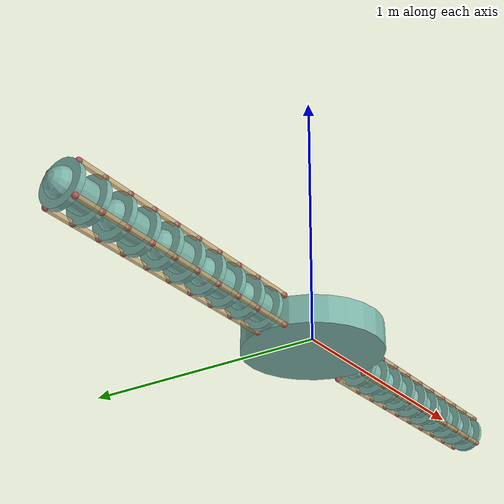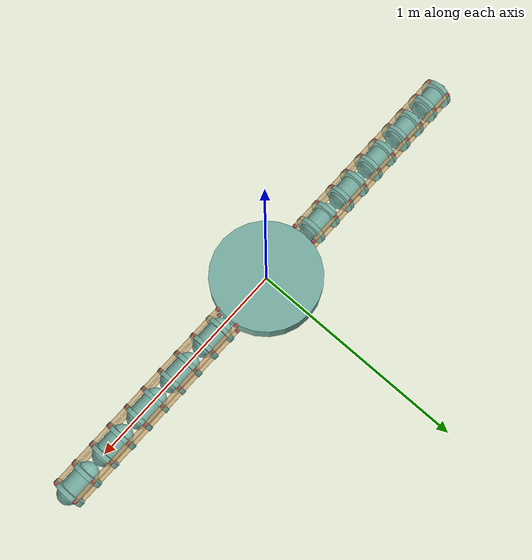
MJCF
<mujoco model="default">
    <compiler angle="radian"/>
    <default>
        <default class="/"/>
    </default>
    <worldbody>
        <body name="//unnamed_body_0">
            <body name="central_disc" pos="0 0 0" euler="0 0 0">
                <geom name="central_disc_disc" class="/" type="cylinder" size="0.25 0.050000000000000003"
                      rgba="0.49019607843137253 0.70980392156862748 0.6588235294117647 1" pos="0 0 0" euler="0 0 0"/>
                <body name="arm_0" pos="0.25 0 0" euler="0 0 0">
                    <body name="arm_0_segment_0" pos="0 0 0" euler="0 0 0">
                        <geom name="arm_0_segment_0_capsule" class="/" type="capsule"
                              size="0.050000000000000003 0.050000000000000003"
                              rgba="0.49019607843137253 0.70980392156862748 0.6588235294117647 1"
                              pos="0.10000000000000001 0 0" euler="0 1.5707963267948966 0"/>
                        <joint name="arm_0_segment_0_in_plane_joint" class="/" type="hinge" pos="0 0 0" axis="0 0 1"
                               limited="true" stiffness="0.10000000000000001"
                               range="-0.3490658503988659 0.3490658503988659" damping="0.01"/>
                        <joint name="arm_0_segment_0_out_of_plane_joint" class="/" type="hinge" pos="0 0 0" axis="0 1 0"
                               limited="true" stiffness="0.10000000000000001"
                               range="-0.3490658503988659 0.3490658503988659" damping="0.01"/>
                        <geom name="arm_0_segment_0_tendon_plate_proximal" class="/" type="cylinder"
                              size="0.075000000000000011 0.01"
                              rgba="0.49019607843137253 0.70980392156862748 0.6588235294117647 1"
                              pos="0.050000000000000003 0 0" euler="0 1.5707963267948966 0"/>
                        <site name="arm_0_segment_0_muscle_attachment_point_proximal_0" class="/" type="sphere"
                              rgba="0.71764705882352942 0.33725490196078434 0.34901960784313724 1" size="0.01"
                              pos="0 0.053033008588991078 -0.053033008588991071"/>
                        <site name="arm_0_segment_0_muscle_attachment_point_proximal_1" class="/" type="sphere"
                              rgba="0.71764705882352942 0.33725490196078434 0.34901960784313724 1" size="0.01"
                              pos="0 -0.053033008588991071 -0.053033008588991078"/>
                        <site name="arm_0_segment_0_muscle_attachment_point_proximal_2" class="/" type="sphere"
                              rgba="0.71764705882352942 0.33725490196078434 0.34901960784313724 1" size="0.01"
                              pos="0 0.053033008588991078 0.053033008588991071"/>
                        <site name="arm_0_segment_0_muscle_attachment_point_proximal_3" class="/" type="sphere"
                              rgba="0.71764705882352942 0.33725490196078434 0.34901960784313724 1" size="0.01"
                              pos="0 -0.053033008588991071 0.053033008588991078"/>
                        <geom name="arm_0_segment_0_tendon_plate_distal" class="/" type="cylinder"
                              size="0.075000000000000011 0.01"
                              rgba="0.49019607843137253 0.70980392156862748 0.6588235294117647 1"
                              pos="0.15000000000000002 0 0" euler="0 1.5707963267948966 0"/>
                        <site name="arm_0_segment_0_muscle_attachment_point_distal_0" class="/" type="sphere"
                              rgba="0.71764705882352942 0.33725490196078434 0.34901960784313724 1" size="0.01"
                              pos="0.15000000000000002 0.053033008588991078 -0.053033008588991071"/>
                        <site name="arm_0_segment_0_muscle_attachment_point_distal_1" class="/" type="sphere"
                              rgba="0.71764705882352942 0.33725490196078434 0.34901960784313724 1" size="0.01"
                              pos="0.15000000000000002 -0.053033008588991071 -0.053033008588991078"/>
                        <site name="arm_0_segment_0_muscle_attachment_point_distal_2" class="/" type="sphere"
                              rgba="0.71764705882352942 0.33725490196078434 0.34901960784313724 1" size="0.01"
                              pos="0.15000000000000002 0.053033008588991078 0.053033008588991071"/>
                        <site name="arm_0_segment_0_muscle_attachment_point_distal_3" class="/" type="sphere"
                              rgba="0.71764705882352942 0.33725490196078434 0.34901960784313724 1" size="0.01"
                              pos="0.15000000000000002 -0.053033008588991071 0.053033008588991078"/>
                        <body name="arm_0_segment_1" pos="0.20000000000000001 0 0" euler="0 0 0">
                            <geom name="arm_0_segment_1_capsule" class="/" type="capsule"
                                  size="0.050000000000000003 0.050000000000000003"
                                  rgba="0.49019607843137253 0.70980392156862748 0.6588235294117647 1"
                                  pos="0.10000000000000001 0 0" euler="0 1.5707963267948966 0"/>
                            <joint name="arm_0_segment_1_in_plane_joint" class="/" type="hinge" pos="0 0 0" axis="0 0 1"
                                   limited="true" stiffness="0.10000000000000001"
                                   range="-0.3490658503988659 0.3490658503988659" damping="0.01"/>
                            <joint name="arm_0_segment_1_out_of_plane_joint" class="/" type="hinge" pos="0 0 0"
                                   axis="0 1 0" limited="true" stiffness="0.10000000000000001"
                                   range="-0.3490658503988659 0.3490658503988659" damping="0.01"/>
                            <geom name="arm_0_segment_1_tendon_plate_proximal" class="/" type="cylinder"
                                  size="0.075000000000000011 0.01"
                                  rgba="0.49019607843137253 0.70980392156862748 0.6588235294117647 1"
                                  pos="0.050000000000000003 0 0" euler="0 1.5707963267948966 0"/>
                            <site name="arm_0_segment_1_muscle_attachment_point_proximal_0" class="/" type="sphere"
                                  rgba="0.71764705882352942 0.33725490196078434 0.34901960784313724 1" size="0.01"
                                  pos="0.050000000000000003 0.053033008588991078 -0.053033008588991071"/>
                            <site name="arm_0_segment_1_muscle_attachment_point_proximal_1" class="/" type="sphere"
                                  rgba="0.71764705882352942 0.33725490196078434 0.34901960784313724 1" size="0.01"
                                  pos="0.050000000000000003 -0.053033008588991071 -0.053033008588991078"/>
                            <site name="arm_0_segment_1_muscle_attachment_point_proximal_2" class="/" type="sphere"
                                  rgba="0.71764705882352942 0.33725490196078434 0.34901960784313724 1" size="0.01"
                                  pos="0.050000000000000003 0.053033008588991078 0.053033008588991071"/>
                            <site name="arm_0_segment_1_muscle_attachment_point_proximal_3" class="/" type="sphere"
                                  rgba="0.71764705882352942 0.33725490196078434 0.34901960784313724 1" size="0.01"
                                  pos="0.050000000000000003 -0.053033008588991071 0.053033008588991078"/>
                            <geom name="arm_0_segment_1_tendon_plate_distal" class="/" type="cylinder"
                                  size="0.075000000000000011 0.01"
                                  rgba="0.49019607843137253 0.70980392156862748 0.6588235294117647 1"
                                  pos="0.15000000000000002 0 0" euler="0 1.5707963267948966 0"/>
                            <site name="arm_0_segment_1_muscle_attachment_point_distal_0" class="/" type="sphere"
                                  rgba="0.71764705882352942 0.33725490196078434 0.34901960784313724 1" size="0.01"
                                  pos="0.15000000000000002 0.053033008588991078 -0.053033008588991071"/>
                            <site name="arm_0_segment_1_muscle_attachment_point_distal_1" class="/" type="sphere"
                                  rgba="0.71764705882352942 0.33725490196078434 0.34901960784313724 1" size="0.01"
                                  pos="0.15000000000000002 -0.053033008588991071 -0.053033008588991078"/>
                            <site name="arm_0_segment_1_muscle_attachment_point_distal_2" class="/" type="sphere"
                                  rgba="0.71764705882352942 0.33725490196078434 0.34901960784313724 1" size="0.01"
                                  pos="0.15000000000000002 0.053033008588991078 0.053033008588991071"/>
                            <site name="arm_0_segment_1_muscle_attachment_point_distal_3" class="/" type="sphere"
                                  rgba="0.71764705882352942 0.33725490196078434 0.34901960784313724 1" size="0.01"
                                  pos="0.15000000000000002 -0.053033008588991071 0.053033008588991078"/>
                            <body name="arm_0_segment_2" pos="0.20000000000000001 0 0" euler="0 0 0">
                                <geom name="arm_0_segment_2_capsule" class="/" type="capsule"
                                      size="0.050000000000000003 0.050000000000000003"
                                      rgba="0.49019607843137253 0.70980392156862748 0.6588235294117647 1"
                                      pos="0.10000000000000001 0 0" euler="0 1.5707963267948966 0"/>
                                <joint name="arm_0_segment_2_in_plane_joint" class="/" type="hinge" pos="0 0 0"
                                       axis="0 0 1" limited="true" stiffness="0.10000000000000001"
                                       range="-0.3490658503988659 0.3490658503988659" damping="0.01"/>
                                <joint name="arm_0_segment_2_out_of_plane_joint" class="/" type="hinge" pos="0 0 0"
                                       axis="0 1 0" limited="true" stiffness="0.10000000000000001"
                                       range="-0.3490658503988659 0.3490658503988659" damping="0.01"/>
                                <geom name="arm_0_segment_2_tendon_plate_proximal" class="/" type="cylinder"
                                      size="0.075000000000000011 0.01"
                                      rgba="0.49019607843137253 0.70980392156862748 0.6588235294117647 1"
                                      pos="0.050000000000000003 0 0" euler="0 1.5707963267948966 0"/>
                                <site name="arm_0_segment_2_muscle_attachment_point_proximal_0" class="/" type="sphere"
                                      rgba="0.71764705882352942 0.33725490196078434 0.34901960784313724 1" size="0.01"
                                      pos="0.050000000000000003 0.053033008588991078 -0.053033008588991071"/>
                                <site name="arm_0_segment_2_muscle_attachment_point_proximal_1" class="/" type="sphere"
                                      rgba="0.71764705882352942 0.33725490196078434 0.34901960784313724 1" size="0.01"
                                      pos="0.050000000000000003 -0.053033008588991071 -0.053033008588991078"/>
                                <site name="arm_0_segment_2_muscle_attachment_point_proximal_2" class="/" type="sphere"
                                      rgba="0.71764705882352942 0.33725490196078434 0.34901960784313724 1" size="0.01"
                                      pos="0.050000000000000003 0.053033008588991078 0.053033008588991071"/>
                                <site name="arm_0_segment_2_muscle_attachment_point_proximal_3" class="/" type="sphere"
                                      rgba="0.71764705882352942 0.33725490196078434 0.34901960784313724 1" size="0.01"
                                      pos="0.050000000000000003 -0.053033008588991071 0.053033008588991078"/>
                                <geom name="arm_0_segment_2_tendon_plate_distal" class="/" type="cylinder"
                                      size="0.075000000000000011 0.01"
                                      rgba="0.49019607843137253 0.70980392156862748 0.6588235294117647 1"
                                      pos="0.15000000000000002 0 0" euler="0 1.5707963267948966 0"/>
                                <site name="arm_0_segment_2_muscle_attachment_point_distal_0" class="/" type="sphere"
                                      rgba="0.71764705882352942 0.33725490196078434 0.34901960784313724 1" size="0.01"
                                      pos="0.15000000000000002 0.053033008588991078 -0.053033008588991071"/>
                                <site name="arm_0_segment_2_muscle_attachment_point_distal_1" class="/" type="sphere"
                                      rgba="0.71764705882352942 0.33725490196078434 0.34901960784313724 1" size="0.01"
                                      pos="0.15000000000000002 -0.053033008588991071 -0.053033008588991078"/>
                                <site name="arm_0_segment_2_muscle_attachment_point_distal_2" class="/" type="sphere"
                                      rgba="0.71764705882352942 0.33725490196078434 0.34901960784313724 1" size="0.01"
                                      pos="0.15000000000000002 0.053033008588991078 0.053033008588991071"/>
                                <site name="arm_0_segment_2_muscle_attachment_point_distal_3" class="/" type="sphere"
                                      rgba="0.71764705882352942 0.33725490196078434 0.34901960784313724 1" size="0.01"
                                      pos="0.15000000000000002 -0.053033008588991071 0.053033008588991078"/>
                                <body name="arm_0_segment_3" pos="0.20000000000000001 0 0" euler="0 0 0">
                                    <geom name="arm_0_segment_3_capsule" class="/" type="capsule"
                                          size="0.050000000000000003 0.050000000000000003"
                                          rgba="0.49019607843137253 0.70980392156862748 0.6588235294117647 1"
                                          pos="0.10000000000000001 0 0" euler="0 1.5707963267948966 0"/>
                                    <joint name="arm_0_segment_3_in_plane_joint" class="/" type="hinge" pos="0 0 0"
                                           axis="0 0 1" limited="true" stiffness="0.10000000000000001"
                                           range="-0.3490658503988659 0.3490658503988659" damping="0.01"/>
                                    <joint name="arm_0_segment_3_out_of_plane_joint" class="/" type="hinge" pos="0 0 0"
                                           axis="0 1 0" limited="true" stiffness="0.10000000000000001"
                                           range="-0.3490658503988659 0.3490658503988659" damping="0.01"/>
                                    <geom name="arm_0_segment_3_tendon_plate_proximal" class="/" type="cylinder"
                                          size="0.075000000000000011 0.01"
                                          rgba="0.49019607843137253 0.70980392156862748 0.6588235294117647 1"
                                          pos="0.050000000000000003 0 0" euler="0 1.5707963267948966 0"/>
                                    <site name="arm_0_segment_3_muscle_attachment_point_proximal_0" class="/"
                                          type="sphere"
                                          rgba="0.71764705882352942 0.33725490196078434 0.34901960784313724 1"
                                          size="0.01"
                                          pos="0.050000000000000003 0.053033008588991078 -0.053033008588991071"/>
                                    <site name="arm_0_segment_3_muscle_attachment_point_proximal_1" class="/"
                                          type="sphere"
                                          rgba="0.71764705882352942 0.33725490196078434 0.34901960784313724 1"
                                          size="0.01"
                                          pos="0.050000000000000003 -0.053033008588991071 -0.053033008588991078"/>
                                    <site name="arm_0_segment_3_muscle_attachment_point_proximal_2" class="/"
                                          type="sphere"
                                          rgba="0.71764705882352942 0.33725490196078434 0.34901960784313724 1"
                                          size="0.01"
                                          pos="0.050000000000000003 0.053033008588991078 0.053033008588991071"/>
                                    <site name="arm_0_segment_3_muscle_attachment_point_proximal_3" class="/"
                                          type="sphere"
                                          rgba="0.71764705882352942 0.33725490196078434 0.34901960784313724 1"
                                          size="0.01"
                                          pos="0.050000000000000003 -0.053033008588991071 0.053033008588991078"/>
                                    <geom name="arm_0_segment_3_tendon_plate_distal" class="/" type="cylinder"
                                          size="0.075000000000000011 0.01"
                                          rgba="0.49019607843137253 0.70980392156862748 0.6588235294117647 1"
                                          pos="0.15000000000000002 0 0" euler="0 1.5707963267948966 0"/>
                                    <site name="arm_0_segment_3_muscle_attachment_point_distal_0" class="/"
                                          type="sphere"
                                          rgba="0.71764705882352942 0.33725490196078434 0.34901960784313724 1"
                                          size="0.01"
                                          pos="0.15000000000000002 0.053033008588991078 -0.053033008588991071"/>
                                    <site name="arm_0_segment_3_muscle_attachment_point_distal_1" class="/"
                                          type="sphere"
                                          rgba="0.71764705882352942 0.33725490196078434 0.34901960784313724 1"
                                          size="0.01"
                                          pos="0.15000000000000002 -0.053033008588991071 -0.053033008588991078"/>
                                    <site name="arm_0_segment_3_muscle_attachment_point_distal_2" class="/"
                                          type="sphere"
                                          rgba="0.71764705882352942 0.33725490196078434 0.34901960784313724 1"
                                          size="0.01"
                                          pos="0.15000000000000002 0.053033008588991078 0.053033008588991071"/>
                                    <site name="arm_0_segment_3_muscle_attachment_point_distal_3" class="/"
                                          type="sphere"
                                          rgba="0.71764705882352942 0.33725490196078434 0.34901960784313724 1"
                                          size="0.01"
                                          pos="0.15000000000000002 -0.053033008588991071 0.053033008588991078"/>
                                    <body name="arm_0_segment_4" pos="0.20000000000000001 0 0" euler="0 0 0">
                                        <geom name="arm_0_segment_4_capsule" class="/" type="capsule"
                                              size="0.050000000000000003 0.050000000000000003"
                                              rgba="0.49019607843137253 0.70980392156862748 0.6588235294117647 1"
                                              pos="0.10000000000000001 0 0" euler="0 1.5707963267948966 0"/>
                                        <joint name="arm_0_segment_4_in_plane_joint" class="/" type="hinge" pos="0 0 0"
                                               axis="0 0 1" limited="true" stiffness="0.10000000000000001"
                                               range="-0.3490658503988659 0.3490658503988659" damping="0.01"/>
                                        <joint name="arm_0_segment_4_out_of_plane_joint" class="/" type="hinge"
                                               pos="0 0 0" axis="0 1 0" limited="true" stiffness="0.10000000000000001"
                                               range="-0.3490658503988659 0.3490658503988659" damping="0.01"/>
                                        <geom name="arm_0_segment_4_tendon_plate_proximal" class="/" type="cylinder"
                                              size="0.075000000000000011 0.01"
                                              rgba="0.49019607843137253 0.70980392156862748 0.6588235294117647 1"
                                              pos="0.050000000000000003 0 0" euler="0 1.5707963267948966 0"/>
                                        <site name="arm_0_segment_4_muscle_attachment_point_proximal_0" class="/"
                                              type="sphere"
                                              rgba="0.71764705882352942 0.33725490196078434 0.34901960784313724 1"
                                              size="0.01"
                                              pos="0.050000000000000003 0.053033008588991078 -0.053033008588991071"/>
                                        <site name="arm_0_segment_4_muscle_attachment_point_proximal_1" class="/"
                                              type="sphere"
                                              rgba="0.71764705882352942 0.33725490196078434 0.34901960784313724 1"
                                              size="0.01"
                                              pos="0.050000000000000003 -0.053033008588991071 -0.053033008588991078"/>
                                        <site name="arm_0_segment_4_muscle_attachment_point_proximal_2" class="/"
                                              type="sphere"
                                              rgba="0.71764705882352942 0.33725490196078434 0.34901960784313724 1"
                                              size="0.01"
                                              pos="0.050000000000000003 0.053033008588991078 0.053033008588991071"/>
                                        <site name="arm_0_segment_4_muscle_attachment_point_proximal_3" class="/"
                                              type="sphere"
                                              rgba="0.71764705882352942 0.33725490196078434 0.34901960784313724 1"
                                              size="0.01"
                                              pos="0.050000000000000003 -0.053033008588991071 0.053033008588991078"/>
                                        <geom name="arm_0_segment_4_tendon_plate_distal" class="/" type="cylinder"
                                              size="0.075000000000000011 0.01"
                                              rgba="0.49019607843137253 0.70980392156862748 0.6588235294117647 1"
                                              pos="0.15000000000000002 0 0" euler="0 1.5707963267948966 0"/>
                                        <site name="arm_0_segment_4_muscle_attachment_point_distal_0" class="/"
                                              type="sphere"
                                              rgba="0.71764705882352942 0.33725490196078434 0.34901960784313724 1"
                                              size="0.01"
                                              pos="0.15000000000000002 0.053033008588991078 -0.053033008588991071"/>
                                        <site name="arm_0_segment_4_muscle_attachment_point_distal_1" class="/"
                                              type="sphere"
                                              rgba="0.71764705882352942 0.33725490196078434 0.34901960784313724 1"
                                              size="0.01"
                                              pos="0.15000000000000002 -0.053033008588991071 -0.053033008588991078"/>
                                        <site name="arm_0_segment_4_muscle_attachment_point_distal_2" class="/"
                                              type="sphere"
                                              rgba="0.71764705882352942 0.33725490196078434 0.34901960784313724 1"
                                              size="0.01"
                                              pos="0.15000000000000002 0.053033008588991078 0.053033008588991071"/>
                                        <site name="arm_0_segment_4_muscle_attachment_point_distal_3" class="/"
                                              type="sphere"
                                              rgba="0.71764705882352942 0.33725490196078434 0.34901960784313724 1"
                                              size="0.01"
                                              pos="0.15000000000000002 -0.053033008588991071 0.053033008588991078"/>
                                    </body>
                                </body>
                            </body>
                        </body>
                    </body>
                    <site name="arm_0_muscle_attachment_point_0" class="/" type="sphere"
                          rgba="0.71764705882352942 0.33725490196078434 0.34901960784313724 1" size="0.01"
                          pos="0 0.053033008588991078 -0.053033008588991071"/>
                    <site name="arm_0_muscle_attachment_point_1" class="/" type="sphere"
                          rgba="0.71764705882352942 0.33725490196078434 0.34901960784313724 1" size="0.01"
                          pos="0 -0.053033008588991071 -0.053033008588991078"/>
                    <site name="arm_0_muscle_attachment_point_2" class="/" type="sphere"
                          rgba="0.71764705882352942 0.33725490196078434 0.34901960784313724 1" size="0.01"
                          pos="0 0.053033008588991078 0.053033008588991071"/>
                    <site name="arm_0_muscle_attachment_point_3" class="/" type="sphere"
                          rgba="0.71764705882352942 0.33725490196078434 0.34901960784313724 1" size="0.01"
                          pos="0 -0.053033008588991071 0.053033008588991078"/>
                </body>
                <body name="arm_1" pos="-0.25 3.061616997868383e-17 0" euler="0 0 3.1415926535897931">
                    <body name="arm_1_segment_0" pos="0 0 0" euler="0 0 0">
                        <geom name="arm_1_segment_0_capsule" class="/" type="capsule"
                              size="0.050000000000000003 0.050000000000000003"
                              rgba="0.49019607843137253 0.70980392156862748 0.6588235294117647 1"
                              pos="0.10000000000000001 0 0" euler="0 1.5707963267948966 0"/>
                        <joint name="arm_1_segment_0_in_plane_joint" class="/" type="hinge" pos="0 0 0" axis="0 0 1"
                               limited="true" stiffness="0.10000000000000001"
                               range="-0.3490658503988659 0.3490658503988659" damping="0.01"/>
                        <joint name="arm_1_segment_0_out_of_plane_joint" class="/" type="hinge" pos="0 0 0" axis="0 1 0"
                               limited="true" stiffness="0.10000000000000001"
                               range="-0.3490658503988659 0.3490658503988659" damping="0.01"/>
                        <geom name="arm_1_segment_0_tendon_plate_proximal" class="/" type="cylinder"
                              size="0.075000000000000011 0.01"
                              rgba="0.49019607843137253 0.70980392156862748 0.6588235294117647 1"
                              pos="0.050000000000000003 0 0" euler="0 1.5707963267948966 0"/>
                        <site name="arm_1_segment_0_muscle_attachment_point_proximal_0" class="/" type="sphere"
                              rgba="0.71764705882352942 0.33725490196078434 0.34901960784313724 1" size="0.01"
                              pos="0 0.053033008588991078 -0.053033008588991071"/>
                        <site name="arm_1_segment_0_muscle_attachment_point_proximal_1" class="/" type="sphere"
                              rgba="0.71764705882352942 0.33725490196078434 0.34901960784313724 1" size="0.01"
                              pos="0 -0.053033008588991071 -0.053033008588991078"/>
                        <site name="arm_1_segment_0_muscle_attachment_point_proximal_2" class="/" type="sphere"
                              rgba="0.71764705882352942 0.33725490196078434 0.34901960784313724 1" size="0.01"
                              pos="0 0.053033008588991078 0.053033008588991071"/>
                        <site name="arm_1_segment_0_muscle_attachment_point_proximal_3" class="/" type="sphere"
                              rgba="0.71764705882352942 0.33725490196078434 0.34901960784313724 1" size="0.01"
                              pos="0 -0.053033008588991071 0.053033008588991078"/>
                        <geom name="arm_1_segment_0_tendon_plate_distal" class="/" type="cylinder"
                              size="0.075000000000000011 0.01"
                              rgba="0.49019607843137253 0.70980392156862748 0.6588235294117647 1"
                              pos="0.15000000000000002 0 0" euler="0 1.5707963267948966 0"/>
                        <site name="arm_1_segment_0_muscle_attachment_point_distal_0" class="/" type="sphere"
                              rgba="0.71764705882352942 0.33725490196078434 0.34901960784313724 1" size="0.01"
                              pos="0.15000000000000002 0.053033008588991078 -0.053033008588991071"/>
                        <site name="arm_1_segment_0_muscle_attachment_point_distal_1" class="/" type="sphere"
                              rgba="0.71764705882352942 0.33725490196078434 0.34901960784313724 1" size="0.01"
                              pos="0.15000000000000002 -0.053033008588991071 -0.053033008588991078"/>
                        <site name="arm_1_segment_0_muscle_attachment_point_distal_2" class="/" type="sphere"
                              rgba="0.71764705882352942 0.33725490196078434 0.34901960784313724 1" size="0.01"
                              pos="0.15000000000000002 0.053033008588991078 0.053033008588991071"/>
                        <site name="arm_1_segment_0_muscle_attachment_point_distal_3" class="/" type="sphere"
                              rgba="0.71764705882352942 0.33725490196078434 0.34901960784313724 1" size="0.01"
                              pos="0.15000000000000002 -0.053033008588991071 0.053033008588991078"/>
                        <body name="arm_1_segment_1" pos="0.20000000000000001 0 0" euler="0 0 0">
                            <geom name="arm_1_segment_1_capsule" class="/" type="capsule"
                                  size="0.050000000000000003 0.050000000000000003"
                                  rgba="0.49019607843137253 0.70980392156862748 0.6588235294117647 1"
                                  pos="0.10000000000000001 0 0" euler="0 1.5707963267948966 0"/>
                            <joint name="arm_1_segment_1_in_plane_joint" class="/" type="hinge" pos="0 0 0" axis="0 0 1"
                                   limited="true" stiffness="0.10000000000000001"
                                   range="-0.3490658503988659 0.3490658503988659" damping="0.01"/>
                            <joint name="arm_1_segment_1_out_of_plane_joint" class="/" type="hinge" pos="0 0 0"
                                   axis="0 1 0" limited="true" stiffness="0.10000000000000001"
                                   range="-0.3490658503988659 0.3490658503988659" damping="0.01"/>
                            <geom name="arm_1_segment_1_tendon_plate_proximal" class="/" type="cylinder"
                                  size="0.075000000000000011 0.01"
                                  rgba="0.49019607843137253 0.70980392156862748 0.6588235294117647 1"
                                  pos="0.050000000000000003 0 0" euler="0 1.5707963267948966 0"/>
                            <site name="arm_1_segment_1_muscle_attachment_point_proximal_0" class="/" type="sphere"
                                  rgba="0.71764705882352942 0.33725490196078434 0.34901960784313724 1" size="0.01"
                                  pos="0.050000000000000003 0.053033008588991078 -0.053033008588991071"/>
                            <site name="arm_1_segment_1_muscle_attachment_point_proximal_1" class="/" type="sphere"
                                  rgba="0.71764705882352942 0.33725490196078434 0.34901960784313724 1" size="0.01"
                                  pos="0.050000000000000003 -0.053033008588991071 -0.053033008588991078"/>
                            <site name="arm_1_segment_1_muscle_attachment_point_proximal_2" class="/" type="sphere"
                                  rgba="0.71764705882352942 0.33725490196078434 0.34901960784313724 1" size="0.01"
                                  pos="0.050000000000000003 0.053033008588991078 0.053033008588991071"/>
                            <site name="arm_1_segment_1_muscle_attachment_point_proximal_3" class="/" type="sphere"
                                  rgba="0.71764705882352942 0.33725490196078434 0.34901960784313724 1" size="0.01"
                                  pos="0.050000000000000003 -0.053033008588991071 0.053033008588991078"/>
                            <geom name="arm_1_segment_1_tendon_plate_distal" class="/" type="cylinder"
                                  size="0.075000000000000011 0.01"
                                  rgba="0.49019607843137253 0.70980392156862748 0.6588235294117647 1"
                                  pos="0.15000000000000002 0 0" euler="0 1.5707963267948966 0"/>
                            <site name="arm_1_segment_1_muscle_attachment_point_distal_0" class="/" type="sphere"
                                  rgba="0.71764705882352942 0.33725490196078434 0.34901960784313724 1" size="0.01"
                                  pos="0.15000000000000002 0.053033008588991078 -0.053033008588991071"/>
                            <site name="arm_1_segment_1_muscle_attachment_point_distal_1" class="/" type="sphere"
                                  rgba="0.71764705882352942 0.33725490196078434 0.34901960784313724 1" size="0.01"
                                  pos="0.15000000000000002 -0.053033008588991071 -0.053033008588991078"/>
                            <site name="arm_1_segment_1_muscle_attachment_point_distal_2" class="/" type="sphere"
                                  rgba="0.71764705882352942 0.33725490196078434 0.34901960784313724 1" size="0.01"
                                  pos="0.15000000000000002 0.053033008588991078 0.053033008588991071"/>
                            <site name="arm_1_segment_1_muscle_attachment_point_distal_3" class="/" type="sphere"
                                  rgba="0.71764705882352942 0.33725490196078434 0.34901960784313724 1" size="0.01"
                                  pos="0.15000000000000002 -0.053033008588991071 0.053033008588991078"/>
                            <body name="arm_1_segment_2" pos="0.20000000000000001 0 0" euler="0 0 0">
                                <geom name="arm_1_segment_2_capsule" class="/" type="capsule"
                                      size="0.050000000000000003 0.050000000000000003"
                                      rgba="0.49019607843137253 0.70980392156862748 0.6588235294117647 1"
                                      pos="0.10000000000000001 0 0" euler="0 1.5707963267948966 0"/>
                                <joint name="arm_1_segment_2_in_plane_joint" class="/" type="hinge" pos="0 0 0"
                                       axis="0 0 1" limited="true" stiffness="0.10000000000000001"
                                       range="-0.3490658503988659 0.3490658503988659" damping="0.01"/>
                                <joint name="arm_1_segment_2_out_of_plane_joint" class="/" type="hinge" pos="0 0 0"
                                       axis="0 1 0" limited="true" stiffness="0.10000000000000001"
                                       range="-0.3490658503988659 0.3490658503988659" damping="0.01"/>
                                <geom name="arm_1_segment_2_tendon_plate_proximal" class="/" type="cylinder"
                                      size="0.075000000000000011 0.01"
                                      rgba="0.49019607843137253 0.70980392156862748 0.6588235294117647 1"
                                      pos="0.050000000000000003 0 0" euler="0 1.5707963267948966 0"/>
                                <site name="arm_1_segment_2_muscle_attachment_point_proximal_0" class="/" type="sphere"
                                      rgba="0.71764705882352942 0.33725490196078434 0.34901960784313724 1" size="0.01"
                                      pos="0.050000000000000003 0.053033008588991078 -0.053033008588991071"/>
                                <site name="arm_1_segment_2_muscle_attachment_point_proximal_1" class="/" type="sphere"
                                      rgba="0.71764705882352942 0.33725490196078434 0.34901960784313724 1" size="0.01"
                                      pos="0.050000000000000003 -0.053033008588991071 -0.053033008588991078"/>
                                <site name="arm_1_segment_2_muscle_attachment_point_proximal_2" class="/" type="sphere"
                                      rgba="0.71764705882352942 0.33725490196078434 0.34901960784313724 1" size="0.01"
                                      pos="0.050000000000000003 0.053033008588991078 0.053033008588991071"/>
                                <site name="arm_1_segment_2_muscle_attachment_point_proximal_3" class="/" type="sphere"
                                      rgba="0.71764705882352942 0.33725490196078434 0.34901960784313724 1" size="0.01"
                                      pos="0.050000000000000003 -0.053033008588991071 0.053033008588991078"/>
                                <geom name="arm_1_segment_2_tendon_plate_distal" class="/" type="cylinder"
                                      size="0.075000000000000011 0.01"
                                      rgba="0.49019607843137253 0.70980392156862748 0.6588235294117647 1"
                                      pos="0.15000000000000002 0 0" euler="0 1.5707963267948966 0"/>
                                <site name="arm_1_segment_2_muscle_attachment_point_distal_0" class="/" type="sphere"
                                      rgba="0.71764705882352942 0.33725490196078434 0.34901960784313724 1" size="0.01"
                                      pos="0.15000000000000002 0.053033008588991078 -0.053033008588991071"/>
                                <site name="arm_1_segment_2_muscle_attachment_point_distal_1" class="/" type="sphere"
                                      rgba="0.71764705882352942 0.33725490196078434 0.34901960784313724 1" size="0.01"
                                      pos="0.15000000000000002 -0.053033008588991071 -0.053033008588991078"/>
                                <site name="arm_1_segment_2_muscle_attachment_point_distal_2" class="/" type="sphere"
                                      rgba="0.71764705882352942 0.33725490196078434 0.34901960784313724 1" size="0.01"
                                      pos="0.15000000000000002 0.053033008588991078 0.053033008588991071"/>
                                <site name="arm_1_segment_2_muscle_attachment_point_distal_3" class="/" type="sphere"
                                      rgba="0.71764705882352942 0.33725490196078434 0.34901960784313724 1" size="0.01"
                                      pos="0.15000000000000002 -0.053033008588991071 0.053033008588991078"/>
                                <body name="arm_1_segment_3" pos="0.20000000000000001 0 0" euler="0 0 0">
                                    <geom name="arm_1_segment_3_capsule" class="/" type="capsule"
                                          size="0.050000000000000003 0.050000000000000003"
                                          rgba="0.49019607843137253 0.70980392156862748 0.6588235294117647 1"
                                          pos="0.10000000000000001 0 0" euler="0 1.5707963267948966 0"/>
                                    <joint name="arm_1_segment_3_in_plane_joint" class="/" type="hinge" pos="0 0 0"
                                           axis="0 0 1" limited="true" stiffness="0.10000000000000001"
                                           range="-0.3490658503988659 0.3490658503988659" damping="0.01"/>
                                    <joint name="arm_1_segment_3_out_of_plane_joint" class="/" type="hinge" pos="0 0 0"
                                           axis="0 1 0" limited="true" stiffness="0.10000000000000001"
                                           range="-0.3490658503988659 0.3490658503988659" damping="0.01"/>
                                    <geom name="arm_1_segment_3_tendon_plate_proximal" class="/" type="cylinder"
                                          size="0.075000000000000011 0.01"
                                          rgba="0.49019607843137253 0.70980392156862748 0.6588235294117647 1"
                                          pos="0.050000000000000003 0 0" euler="0 1.5707963267948966 0"/>
                                    <site name="arm_1_segment_3_muscle_attachment_point_proximal_0" class="/"
                                          type="sphere"
                                          rgba="0.71764705882352942 0.33725490196078434 0.34901960784313724 1"
                                          size="0.01"
                                          pos="0.050000000000000003 0.053033008588991078 -0.053033008588991071"/>
                                    <site name="arm_1_segment_3_muscle_attachment_point_proximal_1" class="/"
                                          type="sphere"
                                          rgba="0.71764705882352942 0.33725490196078434 0.34901960784313724 1"
                                          size="0.01"
                                          pos="0.050000000000000003 -0.053033008588991071 -0.053033008588991078"/>
                                    <site name="arm_1_segment_3_muscle_attachment_point_proximal_2" class="/"
                                          type="sphere"
                                          rgba="0.71764705882352942 0.33725490196078434 0.34901960784313724 1"
                                          size="0.01"
                                          pos="0.050000000000000003 0.053033008588991078 0.053033008588991071"/>
                                    <site name="arm_1_segment_3_muscle_attachment_point_proximal_3" class="/"
                                          type="sphere"
                                          rgba="0.71764705882352942 0.33725490196078434 0.34901960784313724 1"
                                          size="0.01"
                                          pos="0.050000000000000003 -0.053033008588991071 0.053033008588991078"/>
                                    <geom name="arm_1_segment_3_tendon_plate_distal" class="/" type="cylinder"
                                          size="0.075000000000000011 0.01"
                                          rgba="0.49019607843137253 0.70980392156862748 0.6588235294117647 1"
                                          pos="0.15000000000000002 0 0" euler="0 1.5707963267948966 0"/>
                                    <site name="arm_1_segment_3_muscle_attachment_point_distal_0" class="/"
                                          type="sphere"
                                          rgba="0.71764705882352942 0.33725490196078434 0.34901960784313724 1"
                                          size="0.01"
                                          pos="0.15000000000000002 0.053033008588991078 -0.053033008588991071"/>
                                    <site name="arm_1_segment_3_muscle_attachment_point_distal_1" class="/"
                                          type="sphere"
                                          rgba="0.71764705882352942 0.33725490196078434 0.34901960784313724 1"
                                          size="0.01"
                                          pos="0.15000000000000002 -0.053033008588991071 -0.053033008588991078"/>
                                    <site name="arm_1_segment_3_muscle_attachment_point_distal_2" class="/"
                                          type="sphere"
                                          rgba="0.71764705882352942 0.33725490196078434 0.34901960784313724 1"
                                          size="0.01"
                                          pos="0.15000000000000002 0.053033008588991078 0.053033008588991071"/>
                                    <site name="arm_1_segment_3_muscle_attachment_point_distal_3" class="/"
                                          type="sphere"
                                          rgba="0.71764705882352942 0.33725490196078434 0.34901960784313724 1"
                                          size="0.01"
                                          pos="0.15000000000000002 -0.053033008588991071 0.053033008588991078"/>
                                    <body name="arm_1_segment_4" pos="0.20000000000000001 0 0" euler="0 0 0">
                                        <geom name="arm_1_segment_4_capsule" class="/" type="capsule"
                                              size="0.050000000000000003 0.050000000000000003"
                                              rgba="0.49019607843137253 0.70980392156862748 0.6588235294117647 1"
                                              pos="0.10000000000000001 0 0" euler="0 1.5707963267948966 0"/>
                                        <joint name="arm_1_segment_4_in_plane_joint" class="/" type="hinge" pos="0 0 0"
                                               axis="0 0 1" limited="true" stiffness="0.10000000000000001"
                                               range="-0.3490658503988659 0.3490658503988659" damping="0.01"/>
                                        <joint name="arm_1_segment_4_out_of_plane_joint" class="/" type="hinge"
                                               pos="0 0 0" axis="0 1 0" limited="true" stiffness="0.10000000000000001"
                                               range="-0.3490658503988659 0.3490658503988659" damping="0.01"/>
                                        <geom name="arm_1_segment_4_tendon_plate_proximal" class="/" type="cylinder"
                                              size="0.075000000000000011 0.01"
                                              rgba="0.49019607843137253 0.70980392156862748 0.6588235294117647 1"
                                              pos="0.050000000000000003 0 0" euler="0 1.5707963267948966 0"/>
                                        <site name="arm_1_segment_4_muscle_attachment_point_proximal_0" class="/"
                                              type="sphere"
                                              rgba="0.71764705882352942 0.33725490196078434 0.34901960784313724 1"
                                              size="0.01"
                                              pos="0.050000000000000003 0.053033008588991078 -0.053033008588991071"/>
                                        <site name="arm_1_segment_4_muscle_attachment_point_proximal_1" class="/"
                                              type="sphere"
                                              rgba="0.71764705882352942 0.33725490196078434 0.34901960784313724 1"
                                              size="0.01"
                                              pos="0.050000000000000003 -0.053033008588991071 -0.053033008588991078"/>
                                        <site name="arm_1_segment_4_muscle_attachment_point_proximal_2" class="/"
                                              type="sphere"
                                              rgba="0.71764705882352942 0.33725490196078434 0.34901960784313724 1"
                                              size="0.01"
                                              pos="0.050000000000000003 0.053033008588991078 0.053033008588991071"/>
                                        <site name="arm_1_segment_4_muscle_attachment_point_proximal_3" class="/"
                                              type="sphere"
                                              rgba="0.71764705882352942 0.33725490196078434 0.34901960784313724 1"
                                              size="0.01"
                                              pos="0.050000000000000003 -0.053033008588991071 0.053033008588991078"/>
                                        <geom name="arm_1_segment_4_tendon_plate_distal" class="/" type="cylinder"
                                              size="0.075000000000000011 0.01"
                                              rgba="0.49019607843137253 0.70980392156862748 0.6588235294117647 1"
                                              pos="0.15000000000000002 0 0" euler="0 1.5707963267948966 0"/>
                                        <site name="arm_1_segment_4_muscle_attachment_point_distal_0" class="/"
                                              type="sphere"
                                              rgba="0.71764705882352942 0.33725490196078434 0.34901960784313724 1"
                                              size="0.01"
                                              pos="0.15000000000000002 0.053033008588991078 -0.053033008588991071"/>
                                        <site name="arm_1_segment_4_muscle_attachment_point_distal_1" class="/"
                                              type="sphere"
                                              rgba="0.71764705882352942 0.33725490196078434 0.34901960784313724 1"
                                              size="0.01"
                                              pos="0.15000000000000002 -0.053033008588991071 -0.053033008588991078"/>
                                        <site name="arm_1_segment_4_muscle_attachment_point_distal_2" class="/"
                                              type="sphere"
                                              rgba="0.71764705882352942 0.33725490196078434 0.34901960784313724 1"
                                              size="0.01"
                                              pos="0.15000000000000002 0.053033008588991078 0.053033008588991071"/>
                                        <site name="arm_1_segment_4_muscle_attachment_point_distal_3" class="/"
                                              type="sphere"
                                              rgba="0.71764705882352942 0.33725490196078434 0.34901960784313724 1"
                                              size="0.01"
                                              pos="0.15000000000000002 -0.053033008588991071 0.053033008588991078"/>
                                    </body>
                                </body>
                            </body>
                        </body>
                    </body>
                    <site name="arm_1_muscle_attachment_point_0" class="/" type="sphere"
                          rgba="0.71764705882352942 0.33725490196078434 0.34901960784313724 1" size="0.01"
                          pos="0 0.053033008588991078 -0.053033008588991071"/>
                    <site name="arm_1_muscle_attachment_point_1" class="/" type="sphere"
                          rgba="0.71764705882352942 0.33725490196078434 0.34901960784313724 1" size="0.01"
                          pos="0 -0.053033008588991071 -0.053033008588991078"/>
                    <site name="arm_1_muscle_attachment_point_2" class="/" type="sphere"
                          rgba="0.71764705882352942 0.33725490196078434 0.34901960784313724 1" size="0.01"
                          pos="0 0.053033008588991078 0.053033008588991071"/>
                    <site name="arm_1_muscle_attachment_point_3" class="/" type="sphere"
                          rgba="0.71764705882352942 0.33725490196078434 0.34901960784313724 1" size="0.01"
                          pos="0 -0.053033008588991071 0.053033008588991078"/>
                </body>
            </body>
        </body>
    </worldbody>
    <tendon>
        <spatial name="arm_0_tendon_0" class="/" limited="true" range="0.47500000000000009 2.8500000000000005"
                 width="0.0095000000000000015"
                 rgba="0.83921568627450982 0.68235294117647061 0.44705882352941179 0.74509803921568629">
            <site site="arm_0_muscle_attachment_point_0"/>
            <site site="arm_0_segment_0_muscle_attachment_point_proximal_0"/>
            <site site="arm_0_segment_0_muscle_attachment_point_distal_0"/>
            <site site="arm_0_segment_1_muscle_attachment_point_proximal_0"/>
            <site site="arm_0_segment_1_muscle_attachment_point_distal_0"/>
            <site site="arm_0_segment_2_muscle_attachment_point_proximal_0"/>
            <site site="arm_0_segment_2_muscle_attachment_point_distal_0"/>
            <site site="arm_0_segment_3_muscle_attachment_point_proximal_0"/>
            <site site="arm_0_segment_3_muscle_attachment_point_distal_0"/>
            <site site="arm_0_segment_4_muscle_attachment_point_proximal_0"/>
            <site site="arm_0_segment_4_muscle_attachment_point_distal_0"/>
        </spatial>
        <spatial name="arm_0_tendon_1" class="/" limited="true" range="0.47500000000000009 2.8500000000000005"
                 width="0.0095000000000000015"
                 rgba="0.83921568627450982 0.68235294117647061 0.44705882352941179 0.74509803921568629">
            <site site="arm_0_muscle_attachment_point_1"/>
            <site site="arm_0_segment_0_muscle_attachment_point_proximal_1"/>
            <site site="arm_0_segment_0_muscle_attachment_point_distal_1"/>
            <site site="arm_0_segment_1_muscle_attachment_point_proximal_1"/>
            <site site="arm_0_segment_1_muscle_attachment_point_distal_1"/>
            <site site="arm_0_segment_2_muscle_attachment_point_proximal_1"/>
            <site site="arm_0_segment_2_muscle_attachment_point_distal_1"/>
            <site site="arm_0_segment_3_muscle_attachment_point_proximal_1"/>
            <site site="arm_0_segment_3_muscle_attachment_point_distal_1"/>
            <site site="arm_0_segment_4_muscle_attachment_point_proximal_1"/>
            <site site="arm_0_segment_4_muscle_attachment_point_distal_1"/>
        </spatial>
        <spatial name="arm_0_tendon_2" class="/" limited="true" range="0.47500000000000009 2.8500000000000005"
                 width="0.0095000000000000015"
                 rgba="0.83921568627450982 0.68235294117647061 0.44705882352941179 0.74509803921568629">
            <site site="arm_0_muscle_attachment_point_2"/>
            <site site="arm_0_segment_0_muscle_attachment_point_proximal_2"/>
            <site site="arm_0_segment_0_muscle_attachment_point_distal_2"/>
            <site site="arm_0_segment_1_muscle_attachment_point_proximal_2"/>
            <site site="arm_0_segment_1_muscle_attachment_point_distal_2"/>
            <site site="arm_0_segment_2_muscle_attachment_point_proximal_2"/>
            <site site="arm_0_segment_2_muscle_attachment_point_distal_2"/>
            <site site="arm_0_segment_3_muscle_attachment_point_proximal_2"/>
            <site site="arm_0_segment_3_muscle_attachment_point_distal_2"/>
            <site site="arm_0_segment_4_muscle_attachment_point_proximal_2"/>
            <site site="arm_0_segment_4_muscle_attachment_point_distal_2"/>
        </spatial>
        <spatial name="arm_0_tendon_3" class="/" limited="true" range="0.47500000000000009 2.8500000000000005"
                 width="0.0095000000000000015"
                 rgba="0.83921568627450982 0.68235294117647061 0.44705882352941179 0.74509803921568629">
            <site site="arm_0_muscle_attachment_point_3"/>
            <site site="arm_0_segment_0_muscle_attachment_point_proximal_3"/>
            <site site="arm_0_segment_0_muscle_attachment_point_distal_3"/>
            <site site="arm_0_segment_1_muscle_attachment_point_proximal_3"/>
            <site site="arm_0_segment_1_muscle_attachment_point_distal_3"/>
            <site site="arm_0_segment_2_muscle_attachment_point_proximal_3"/>
            <site site="arm_0_segment_2_muscle_attachment_point_distal_3"/>
            <site site="arm_0_segment_3_muscle_attachment_point_proximal_3"/>
            <site site="arm_0_segment_3_muscle_attachment_point_distal_3"/>
            <site site="arm_0_segment_4_muscle_attachment_point_proximal_3"/>
            <site site="arm_0_segment_4_muscle_attachment_point_distal_3"/>
        </spatial>
        <spatial name="arm_1_tendon_0" class="/" limited="true" range="0.47500000000000009 2.8500000000000005"
                 width="0.0095000000000000015"
                 rgba="0.83921568627450982 0.68235294117647061 0.44705882352941179 0.74509803921568629">
            <site site="arm_1_muscle_attachment_point_0"/>
            <site site="arm_1_segment_0_muscle_attachment_point_proximal_0"/>
            <site site="arm_1_segment_0_muscle_attachment_point_distal_0"/>
            <site site="arm_1_segment_1_muscle_attachment_point_proximal_0"/>
            <site site="arm_1_segment_1_muscle_attachment_point_distal_0"/>
            <site site="arm_1_segment_2_muscle_attachment_point_proximal_0"/>
            <site site="arm_1_segment_2_muscle_attachment_point_distal_0"/>
            <site site="arm_1_segment_3_muscle_attachment_point_proximal_0"/>
            <site site="arm_1_segment_3_muscle_attachment_point_distal_0"/>
            <site site="arm_1_segment_4_muscle_attachment_point_proximal_0"/>
            <site site="arm_1_segment_4_muscle_attachment_point_distal_0"/>
        </spatial>
        <spatial name="arm_1_tendon_1" class="/" limited="true" range="0.47500000000000009 2.8500000000000005"
                 width="0.0095000000000000015"
                 rgba="0.83921568627450982 0.68235294117647061 0.44705882352941179 0.74509803921568629">
            <site site="arm_1_muscle_attachment_point_1"/>
            <site site="arm_1_segment_0_muscle_attachment_point_proximal_1"/>
            <site site="arm_1_segment_0_muscle_attachment_point_distal_1"/>
            <site site="arm_1_segment_1_muscle_attachment_point_proximal_1"/>
            <site site="arm_1_segment_1_muscle_attachment_point_distal_1"/>
            <site site="arm_1_segment_2_muscle_attachment_point_proximal_1"/>
            <site site="arm_1_segment_2_muscle_attachment_point_distal_1"/>
            <site site="arm_1_segment_3_muscle_attachment_point_proximal_1"/>
            <site site="arm_1_segment_3_muscle_attachment_point_distal_1"/>
            <site site="arm_1_segment_4_muscle_attachment_point_proximal_1"/>
            <site site="arm_1_segment_4_muscle_attachment_point_distal_1"/>
        </spatial>
        <spatial name="arm_1_tendon_2" class="/" limited="true" range="0.47500000000000009 2.8500000000000005"
                 width="0.0095000000000000015"
                 rgba="0.83921568627450982 0.68235294117647061 0.44705882352941179 0.74509803921568629">
            <site site="arm_1_muscle_attachment_point_2"/>
            <site site="arm_1_segment_0_muscle_attachment_point_proximal_2"/>
            <site site="arm_1_segment_0_muscle_attachment_point_distal_2"/>
            <site site="arm_1_segment_1_muscle_attachment_point_proximal_2"/>
            <site site="arm_1_segment_1_muscle_attachment_point_distal_2"/>
            <site site="arm_1_segment_2_muscle_attachment_point_proximal_2"/>
            <site site="arm_1_segment_2_muscle_attachment_point_distal_2"/>
            <site site="arm_1_segment_3_muscle_attachment_point_proximal_2"/>
            <site site="arm_1_segment_3_muscle_attachment_point_distal_2"/>
            <site site="arm_1_segment_4_muscle_attachment_point_proximal_2"/>
            <site site="arm_1_segment_4_muscle_attachment_point_distal_2"/>
        </spatial>
        <spatial name="arm_1_tendon_3" class="/" limited="true" range="0.47500000000000009 2.8500000000000005"
                 width="0.0095000000000000015"
                 rgba="0.83921568627450982 0.68235294117647061 0.44705882352941179 0.74509803921568629">
            <site site="arm_1_muscle_attachment_point_3"/>
            <site site="arm_1_segment_0_muscle_attachment_point_proximal_3"/>
            <site site="arm_1_segment_0_muscle_attachment_point_distal_3"/>
            <site site="arm_1_segment_1_muscle_attachment_point_proximal_3"/>
            <site site="arm_1_segment_1_muscle_attachment_point_distal_3"/>
            <site site="arm_1_segment_2_muscle_attachment_point_proximal_3"/>
            <site site="arm_1_segment_2_muscle_attachment_point_distal_3"/>
            <site site="arm_1_segment_3_muscle_attachment_point_proximal_3"/>
            <site site="arm_1_segment_3_muscle_attachment_point_distal_3"/>
            <site site="arm_1_segment_4_muscle_attachment_point_proximal_3"/>
            <site site="arm_1_segment_4_muscle_attachment_point_distal_3"/>
        </spatial>
    </tendon>
    <actuator>
        <motor name="arm_0_tendon_0_motor" class="/" ctrllimited="true" forcelimited="true" ctrlrange="-1 1"
               forcerange="-200 0" gear="200" tendon="arm_0_tendon_0"/>
        <motor name="arm_0_tendon_1_motor" class="/" ctrllimited="true" forcelimited="true" ctrlrange="-1 1"
               forcerange="-200 0" gear="200" tendon="arm_0_tendon_1"/>
        <motor name="arm_0_tendon_2_motor" class="/" ctrllimited="true" forcelimited="true" ctrlrange="-1 1"
               forcerange="-200 0" gear="200" tendon="arm_0_tendon_2"/>
        <motor name="arm_0_tendon_3_motor" class="/" ctrllimited="true" forcelimited="true" ctrlrange="-1 1"
               forcerange="-200 0" gear="200" tendon="arm_0_tendon_3"/>
        <motor name="arm_1_tendon_0_motor" class="/" ctrllimited="true" forcelimited="true" ctrlrange="-1 1"
               forcerange="-200 0" gear="200" tendon="arm_1_tendon_0"/>
        <motor name="arm_1_tendon_1_motor" class="/" ctrllimited="true" forcelimited="true" ctrlrange="-1 1"
               forcerange="-200 0" gear="200" tendon="arm_1_tendon_1"/>
        <motor name="arm_1_tendon_2_motor" class="/" ctrllimited="true" forcelimited="true" ctrlrange="-1 1"
               forcerange="-200 0" gear="200" tendon="arm_1_tendon_2"/>
        <motor name="arm_1_tendon_3_motor" class="/" ctrllimited="true" forcelimited="true" ctrlrange="-1 1"
               forcerange="-200 0" gear="200" tendon="arm_1_tendon_3"/>
    </actuator>
    <sensor>
        <jointpos name="arm_0_segment_0_in_plane_joint_jointpos" joint="arm_0_segment_0_in_plane_joint"/>
        <jointpos name="arm_0_segment_0_out_of_plane_joint_jointpos" joint="arm_0_segment_0_out_of_plane_joint"/>
        <jointpos name="arm_0_segment_1_in_plane_joint_jointpos" joint="arm_0_segment_1_in_plane_joint"/>
        <jointpos name="arm_0_segment_1_out_of_plane_joint_jointpos" joint="arm_0_segment_1_out_of_plane_joint"/>
        <jointpos name="arm_0_segment_2_in_plane_joint_jointpos" joint="arm_0_segment_2_in_plane_joint"/>
        <jointpos name="arm_0_segment_2_out_of_plane_joint_jointpos" joint="arm_0_segment_2_out_of_plane_joint"/>
        <jointpos name="arm_0_segment_3_in_plane_joint_jointpos" joint="arm_0_segment_3_in_plane_joint"/>
        <jointpos name="arm_0_segment_3_out_of_plane_joint_jointpos" joint="arm_0_segment_3_out_of_plane_joint"/>
        <jointpos name="arm_0_segment_4_in_plane_joint_jointpos" joint="arm_0_segment_4_in_plane_joint"/>
        <jointpos name="arm_0_segment_4_out_of_plane_joint_jointpos" joint="arm_0_segment_4_out_of_plane_joint"/>
        <tendonpos name="arm_0_tendon_0_tendonpos" tendon="arm_0_tendon_0"/>
        <tendonpos name="arm_0_tendon_1_tendonpos" tendon="arm_0_tendon_1"/>
        <tendonpos name="arm_0_tendon_2_tendonpos" tendon="arm_0_tendon_2"/>
        <tendonpos name="arm_0_tendon_3_tendonpos" tendon="arm_0_tendon_3"/>
        <jointpos name="arm_1_segment_0_in_plane_joint_jointpos" joint="arm_1_segment_0_in_plane_joint"/>
        <jointpos name="arm_1_segment_0_out_of_plane_joint_jointpos" joint="arm_1_segment_0_out_of_plane_joint"/>
        <jointpos name="arm_1_segment_1_in_plane_joint_jointpos" joint="arm_1_segment_1_in_plane_joint"/>
        <jointpos name="arm_1_segment_1_out_of_plane_joint_jointpos" joint="arm_1_segment_1_out_of_plane_joint"/>
        <jointpos name="arm_1_segment_2_in_plane_joint_jointpos" joint="arm_1_segment_2_in_plane_joint"/>
        <jointpos name="arm_1_segment_2_out_of_plane_joint_jointpos" joint="arm_1_segment_2_out_of_plane_joint"/>
        <jointpos name="arm_1_segment_3_in_plane_joint_jointpos" joint="arm_1_segment_3_in_plane_joint"/>
        <jointpos name="arm_1_segment_3_out_of_plane_joint_jointpos" joint="arm_1_segment_3_out_of_plane_joint"/>
        <jointpos name="arm_1_segment_4_in_plane_joint_jointpos" joint="arm_1_segment_4_in_plane_joint"/>
        <jointpos name="arm_1_segment_4_out_of_plane_joint_jointpos" joint="arm_1_segment_4_out_of_plane_joint"/>
        <tendonpos name="arm_1_tendon_0_tendonpos" tendon="arm_1_tendon_0"/>
        <tendonpos name="arm_1_tendon_1_tendonpos" tendon="arm_1_tendon_1"/>
        <tendonpos name="arm_1_tendon_2_tendonpos" tendon="arm_1_tendon_2"/>
        <tendonpos name="arm_1_tendon_3_tendonpos" tendon="arm_1_tendon_3"/>
    </sensor>
</mujoco>
